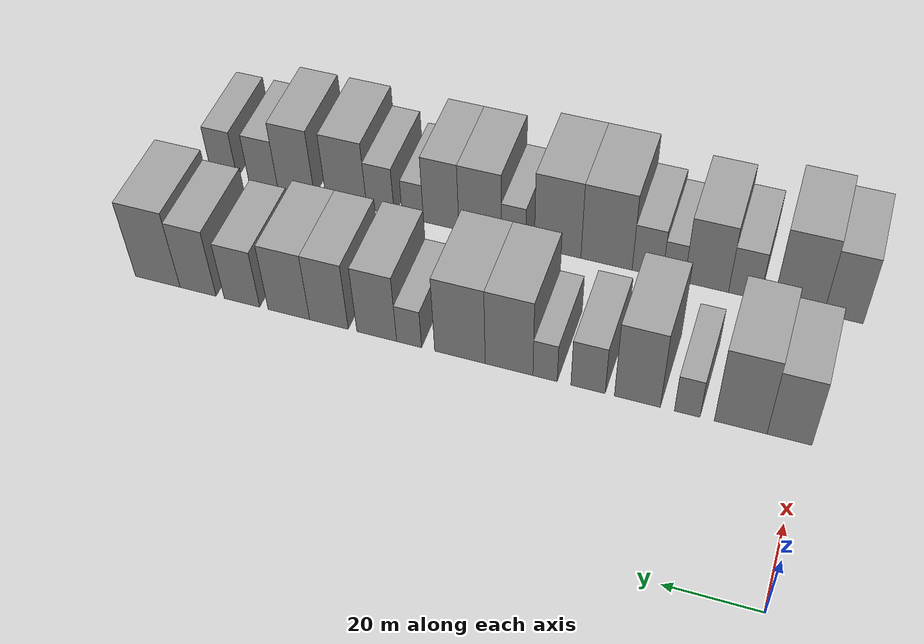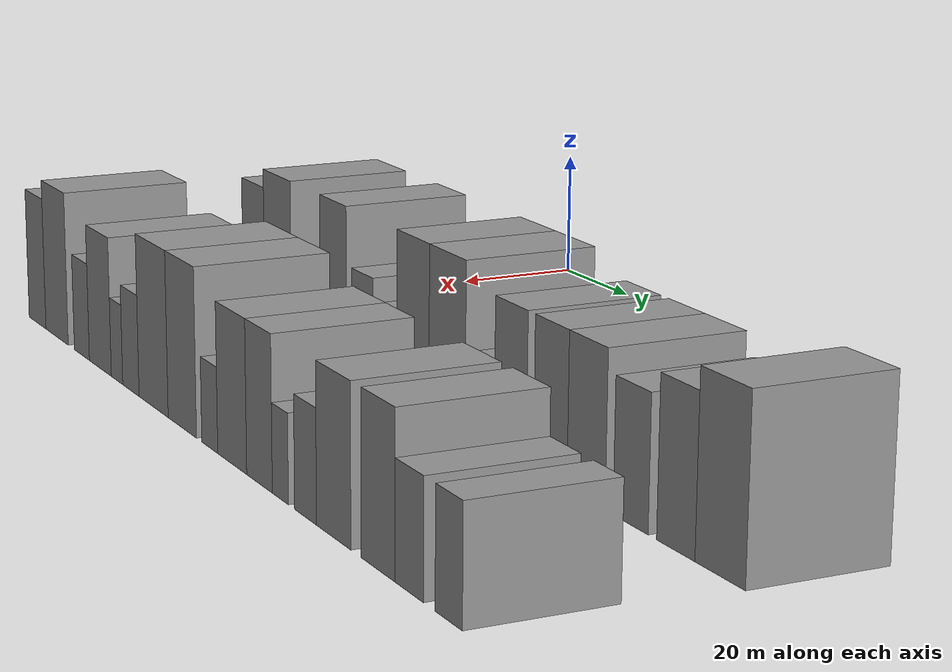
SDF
<sdf version="1.6">
 <world name="default">
  <model name="building_34">
   <static>1</static>
   <pose>50.0000 2.4501 0 0.000000 0.000000 0.000000</pose>
   <link name="link">
    <pose>0 0 10.50 0 0 0</pose>
    <collision name="collision"><geometry><box><size>20.0000 9.3061 21.0000</size></box></geometry></collision>
    <visual name="visual">
     <cast_shadows>0</cast_shadows>
     <geometry><box><size>20.0000 9.3061 21.0000</size></box></geometry>
     <material>
      <script>
       <uri>model://grey_wall/materials/scripts</uri>
       <uri>model://grey_wall/materials/textures</uri>
       <name>vrc/grey_wall</name>
      </script>
     </material>
    </visual>
   </link>
  </model>
  <model name="building_35">
   <static>1</static>
   <pose>50.0000 12.6278 0 0.000000 0.000000 0.000000</pose>
   <link name="link">
    <pose>0 0 12.00 0 0 0</pose>
    <collision name="collision"><geometry><box><size>20.0000 11.0493 24.0000</size></box></geometry></collision>
    <visual name="visual">
     <cast_shadows>0</cast_shadows>
     <geometry><box><size>20.0000 11.0493 24.0000</size></box></geometry>
     <material>
      <script>
       <uri>model://grey_wall/materials/scripts</uri>
       <uri>model://grey_wall/materials/textures</uri>
       <name>vrc/grey_wall</name>
      </script>
     </material>
    </visual>
   </link>
  </model>
  <model name="building_36">
   <static>1</static>
   <pose>50.0000 23.8809 0 0.000000 0.000000 0.000000</pose>
   <link name="link">
    <pose>0 0 6.00 0 0 0</pose>
    <collision name="collision"><geometry><box><size>20.0000 5.4568 12.0000</size></box></geometry></collision>
    <visual name="visual">
     <cast_shadows>0</cast_shadows>
     <geometry><box><size>20.0000 5.4568 12.0000</size></box></geometry>
     <material>
      <script>
       <uri>model://grey_wall/materials/scripts</uri>
       <uri>model://grey_wall/materials/textures</uri>
       <name>vrc/grey_wall</name>
      </script>
     </material>
    </visual>
   </link>
  </model>
  <model name="building_37">
   <static>1</static>
   <pose>50.0000 34.5633 0 0.000000 0.000000 0.000000</pose>
   <link name="link">
    <pose>0 0 12.00 0 0 0</pose>
    <collision name="collision"><geometry><box><size>20.0000 9.9080 24.0000</size></box></geometry></collision>
    <visual name="visual">
     <cast_shadows>0</cast_shadows>
     <geometry><box><size>20.0000 9.9080 24.0000</size></box></geometry>
     <material>
      <script>
       <uri>model://grey_wall/materials/scripts</uri>
       <uri>model://grey_wall/materials/textures</uri>
       <name>vrc/grey_wall</name>
      </script>
     </material>
    </visual>
   </link>
  </model>
  <model name="building_38">
   <static>1</static>
   <pose>50.0000 45.2656 0 0.000000 0.000000 0.000000</pose>
   <link name="link">
    <pose>0 0 7.50 0 0 0</pose>
    <collision name="collision"><geometry><box><size>20.0000 7.4966 15.0000</size></box></geometry></collision>
    <visual name="visual">
     <cast_shadows>0</cast_shadows>
     <geometry><box><size>20.0000 7.4966 15.0000</size></box></geometry>
     <material>
      <script>
       <uri>model://grey_wall/materials/scripts</uri>
       <uri>model://grey_wall/materials/textures</uri>
       <name>vrc/grey_wall</name>
      </script>
     </material>
    </visual>
   </link>
  </model>
  <model name="building_39">
   <static>1</static>
   <pose>50.0000 54.6989 0 0.000000 0.000000 0.000000</pose>
   <link name="link">
    <pose>0 0 6.00 0 0 0</pose>
    <collision name="collision"><geometry><box><size>20.0000 5.3701 12.0000</size></box></geometry></collision>
    <visual name="visual">
     <cast_shadows>0</cast_shadows>
     <geometry><box><size>20.0000 5.3701 12.0000</size></box></geometry>
     <material>
      <script>
       <uri>model://grey_wall/materials/scripts</uri>
       <uri>model://grey_wall/materials/textures</uri>
       <name>vrc/grey_wall</name>
      </script>
     </material>
    </visual>
   </link>
  </model>
  <model name="building_40">
   <static>1</static>
   <pose>50.0000 62.7088 0 0.000000 0.000000 0.000000</pose>
   <link name="link">
    <pose>0 0 12.00 0 0 0</pose>
    <collision name="collision"><geometry><box><size>20.0000 10.6496 24.0000</size></box></geometry></collision>
    <visual name="visual">
     <cast_shadows>0</cast_shadows>
     <geometry><box><size>20.0000 10.6496 24.0000</size></box></geometry>
     <material>
      <script>
       <uri>model://grey_wall/materials/scripts</uri>
       <uri>model://grey_wall/materials/textures</uri>
       <name>vrc/grey_wall</name>
      </script>
     </material>
    </visual>
   </link>
  </model>
  <model name="building_41">
   <static>1</static>
   <pose>50.0000 73.7607 0 0.000000 0.000000 0.000000</pose>
   <link name="link">
    <pose>0 0 12.00 0 0 0</pose>
    <collision name="collision"><geometry><box><size>20.0000 11.4543 24.0000</size></box></geometry></collision>
    <visual name="visual">
     <cast_shadows>0</cast_shadows>
     <geometry><box><size>20.0000 11.4543 24.0000</size></box></geometry>
     <material>
      <script>
       <uri>model://grey_wall/materials/scripts</uri>
       <uri>model://grey_wall/materials/textures</uri>
       <name>vrc/grey_wall</name>
      </script>
     </material>
    </visual>
   </link>
  </model>
  <model name="building_42">
   <static>1</static>
   <pose>50.0000 85.3550 0 0.000000 0.000000 0.000000</pose>
   <link name="link">
    <pose>0 0 6.00 0 0 0</pose>
    <collision name="collision"><geometry><box><size>20.0000 5.7342 12.0000</size></box></geometry></collision>
    <visual name="visual">
     <cast_shadows>0</cast_shadows>
     <geometry><box><size>20.0000 5.7342 12.0000</size></box></geometry>
     <material>
      <script>
       <uri>model://grey_wall/materials/scripts</uri>
       <uri>model://grey_wall/materials/textures</uri>
       <name>vrc/grey_wall</name>
      </script>
     </material>
    </visual>
   </link>
  </model>
  <model name="building_43">
   <static>1</static>
   <pose>50.0000 92.8432 0 0.000000 0.000000 0.000000</pose>
   <link name="link">
    <pose>0 0 10.50 0 0 0</pose>
    <collision name="collision"><geometry><box><size>20.0000 9.2423 21.0000</size></box></geometry></collision>
    <visual name="visual">
     <cast_shadows>0</cast_shadows>
     <geometry><box><size>20.0000 9.2423 21.0000</size></box></geometry>
     <material>
      <script>
       <uri>model://grey_wall/materials/scripts</uri>
       <uri>model://grey_wall/materials/textures</uri>
       <name>vrc/grey_wall</name>
      </script>
     </material>
    </visual>
   </link>
  </model>
  <model name="building_44">
   <static>1</static>
   <pose>50.0000 104.0225 0 0.000000 0.000000 0.000000</pose>
   <link name="link">
    <pose>0 0 10.50 0 0 0</pose>
    <collision name="collision"><geometry><box><size>20.0000 9.1162 21.0000</size></box></geometry></collision>
    <visual name="visual">
     <cast_shadows>0</cast_shadows>
     <geometry><box><size>20.0000 9.1162 21.0000</size></box></geometry>
     <material>
      <script>
       <uri>model://grey_wall/materials/scripts</uri>
       <uri>model://grey_wall/materials/textures</uri>
       <name>vrc/grey_wall</name>
      </script>
     </material>
    </visual>
   </link>
  </model>
  <model name="building_45">
   <static>1</static>
   <pose>50.0000 113.5234 0 0.000000 0.000000 0.000000</pose>
   <link name="link">
    <pose>0 0 10.50 0 0 0</pose>
    <collision name="collision"><geometry><box><size>20.0000 9.8857 21.0000</size></box></geometry></collision>
    <visual name="visual">
     <cast_shadows>0</cast_shadows>
     <geometry><box><size>20.0000 9.8857 21.0000</size></box></geometry>
     <material>
      <script>
       <uri>model://grey_wall/materials/scripts</uri>
       <uri>model://grey_wall/materials/textures</uri>
       <name>vrc/grey_wall</name>
      </script>
     </material>
    </visual>
   </link>
  </model>
  <model name="building_46">
   <static>1</static>
   <pose>50.0000 124.7438 0 0.000000 0.000000 0.000000</pose>
   <link name="link">
    <pose>0 0 9.00 0 0 0</pose>
    <collision name="collision"><geometry><box><size>20.0000 8.5551 18.0000</size></box></geometry></collision>
    <visual name="visual">
     <cast_shadows>0</cast_shadows>
     <geometry><box><size>20.0000 8.5551 18.0000</size></box></geometry>
     <material>
      <script>
       <uri>model://grey_wall/materials/scripts</uri>
       <uri>model://grey_wall/materials/textures</uri>
       <name>vrc/grey_wall</name>
      </script>
     </material>
    </visual>
   </link>
  </model>
  <model name="building_47">
   <static>1</static>
   <pose>50.0000 135.4320 0 0.000000 0.000000 0.000000</pose>
   <link name="link">
    <pose>0 0 10.50 0 0 0</pose>
    <collision name="collision"><geometry><box><size>20.0000 8.8213 21.0000</size></box></geometry></collision>
    <visual name="visual">
     <cast_shadows>0</cast_shadows>
     <geometry><box><size>20.0000 8.8213 21.0000</size></box></geometry>
     <material>
      <script>
       <uri>model://grey_wall/materials/scripts</uri>
       <uri>model://grey_wall/materials/textures</uri>
       <name>vrc/grey_wall</name>
      </script>
     </material>
    </visual>
   </link>
  </model>
  <model name="building_48">
   <static>1</static>
   <pose>50.0000 145.3478 0 0.000000 0.000000 0.000000</pose>
   <link name="link">
    <pose>0 0 12.00 0 0 0</pose>
    <collision name="collision"><geometry><box><size>20.0000 11.0102 24.0000</size></box></geometry></collision>
    <visual name="visual">
     <cast_shadows>0</cast_shadows>
     <geometry><box><size>20.0000 11.0102 24.0000</size></box></geometry>
     <material>
      <script>
       <uri>model://grey_wall/materials/scripts</uri>
       <uri>model://grey_wall/materials/textures</uri>
       <name>vrc/grey_wall</name>
      </script>
     </material>
    </visual>
   </link>
  </model>
  <model name="building_98">
   <static>1</static>
   <pose>85.0000 -3.3606 0 0.000000 0.000000 0.000000</pose>
   <link name="link">
    <pose>0 0 10.50 0 0 0</pose>
    <collision name="collision"><geometry><box><size>20.0000 8.7096 21.0000</size></box></geometry></collision>
    <visual name="visual">
     <cast_shadows>0</cast_shadows>
     <geometry><box><size>20.0000 8.7096 21.0000</size></box></geometry>
     <material>
      <script>
       <uri>model://grey_wall/materials/scripts</uri>
       <uri>model://grey_wall/materials/textures</uri>
       <name>vrc/grey_wall</name>
      </script>
     </material>
    </visual>
   </link>
  </model>
  <model name="building_99">
   <static>1</static>
   <pose>85.0000 6.5780 0 0.000000 0.000000 0.000000</pose>
   <link name="link">
    <pose>0 0 12.00 0 0 0</pose>
    <collision name="collision"><geometry><box><size>20.0000 11.1675 24.0000</size></box></geometry></collision>
    <visual name="visual">
     <cast_shadows>0</cast_shadows>
     <geometry><box><size>20.0000 11.1675 24.0000</size></box></geometry>
     <material>
      <script>
       <uri>model://grey_wall/materials/scripts</uri>
       <uri>model://grey_wall/materials/textures</uri>
       <name>vrc/grey_wall</name>
      </script>
     </material>
    </visual>
   </link>
  </model>
  <model name="building_100">
   <static>1</static>
   <pose>85.0000 18.7271 0 0.000000 0.000000 0.000000</pose>
   <link name="link">
    <pose>0 0 7.50 0 0 0</pose>
    <collision name="collision"><geometry><box><size>20.0000 7.1307 15.0000</size></box></geometry></collision>
    <visual name="visual">
     <cast_shadows>0</cast_shadows>
     <geometry><box><size>20.0000 7.1307 15.0000</size></box></geometry>
     <material>
      <script>
       <uri>model://grey_wall/materials/scripts</uri>
       <uri>model://grey_wall/materials/textures</uri>
       <name>vrc/grey_wall</name>
      </script>
     </material>
    </visual>
   </link>
  </model>
  <model name="building_101">
   <static>1</static>
   <pose>85.0000 27.3192 0 0.000000 0.000000 0.000000</pose>
   <link name="link">
    <pose>0 0 10.50 0 0 0</pose>
    <collision name="collision"><geometry><box><size>20.0000 10.0535 21.0000</size></box></geometry></collision>
    <visual name="visual">
     <cast_shadows>0</cast_shadows>
     <geometry><box><size>20.0000 10.0535 21.0000</size></box></geometry>
     <material>
      <script>
       <uri>model://grey_wall/materials/scripts</uri>
       <uri>model://grey_wall/materials/textures</uri>
       <name>vrc/grey_wall</name>
      </script>
     </material>
    </visual>
   </link>
  </model>
  <model name="building_102">
   <static>1</static>
   <pose>85.0000 34.8695 0 0.000000 0.000000 0.000000</pose>
   <link name="link">
    <pose>0 0 6.00 0 0 0</pose>
    <collision name="collision"><geometry><box><size>20.0000 5.0471 12.0000</size></box></geometry></collision>
    <visual name="visual">
     <cast_shadows>0</cast_shadows>
     <geometry><box><size>20.0000 5.0471 12.0000</size></box></geometry>
     <material>
      <script>
       <uri>model://grey_wall/materials/scripts</uri>
       <uri>model://grey_wall/materials/textures</uri>
       <name>vrc/grey_wall</name>
      </script>
     </material>
    </visual>
   </link>
  </model>
  <model name="building_103">
   <static>1</static>
   <pose>85.0000 40.9178 0 0.000000 0.000000 0.000000</pose>
   <link name="link">
    <pose>0 0 7.50 0 0 0</pose>
    <collision name="collision"><geometry><box><size>20.0000 7.0496 15.0000</size></box></geometry></collision>
    <visual name="visual">
     <cast_shadows>0</cast_shadows>
     <geometry><box><size>20.0000 7.0496 15.0000</size></box></geometry>
     <material>
      <script>
       <uri>model://grey_wall/materials/scripts</uri>
       <uri>model://grey_wall/materials/textures</uri>
       <name>vrc/grey_wall</name>
      </script>
     </material>
    </visual>
   </link>
  </model>
  <model name="building_104">
   <static>1</static>
   <pose>85.0000 50.4417 0 0.000000 0.000000 0.000000</pose>
   <link name="link">
    <pose>0 0 12.00 0 0 0</pose>
    <collision name="collision"><geometry><box><size>20.0000 11.9984 24.0000</size></box></geometry></collision>
    <visual name="visual">
     <cast_shadows>0</cast_shadows>
     <geometry><box><size>20.0000 11.9984 24.0000</size></box></geometry>
     <material>
      <script>
       <uri>model://grey_wall/materials/scripts</uri>
       <uri>model://grey_wall/materials/textures</uri>
       <name>vrc/grey_wall</name>
      </script>
     </material>
    </visual>
   </link>
  </model>
  <model name="building_105">
   <static>1</static>
   <pose>85.0000 61.9719 0 0.000000 0.000000 0.000000</pose>
   <link name="link">
    <pose>0 0 12.00 0 0 0</pose>
    <collision name="collision"><geometry><box><size>20.0000 11.0620 24.0000</size></box></geometry></collision>
    <visual name="visual">
     <cast_shadows>0</cast_shadows>
     <geometry><box><size>20.0000 11.0620 24.0000</size></box></geometry>
     <material>
      <script>
       <uri>model://grey_wall/materials/scripts</uri>
       <uri>model://grey_wall/materials/textures</uri>
       <name>vrc/grey_wall</name>
      </script>
     </material>
    </visual>
   </link>
  </model>
  <model name="building_106">
   <static>1</static>
   <pose>85.0000 72.4606 0 0.000000 0.000000 0.000000</pose>
   <link name="link">
    <pose>0 0 6.00 0 0 0</pose>
    <collision name="collision"><geometry><box><size>20.0000 5.9154 12.0000</size></box></geometry></collision>
    <visual name="visual">
     <cast_shadows>0</cast_shadows>
     <geometry><box><size>20.0000 5.9154 12.0000</size></box></geometry>
     <material>
      <script>
       <uri>model://grey_wall/materials/scripts</uri>
       <uri>model://grey_wall/materials/textures</uri>
       <name>vrc/grey_wall</name>
      </script>
     </material>
    </visual>
   </link>
  </model>
  <model name="building_107">
   <static>1</static>
   <pose>85.0000 80.5788 0 0.000000 0.000000 0.000000</pose>
   <link name="link">
    <pose>0 0 10.50 0 0 0</pose>
    <collision name="collision"><geometry><box><size>20.0000 10.3210 21.0000</size></box></geometry></collision>
    <visual name="visual">
     <cast_shadows>0</cast_shadows>
     <geometry><box><size>20.0000 10.3210 21.0000</size></box></geometry>
     <material>
      <script>
       <uri>model://grey_wall/materials/scripts</uri>
       <uri>model://grey_wall/materials/textures</uri>
       <name>vrc/grey_wall</name>
      </script>
     </material>
    </visual>
   </link>
  </model>
  <model name="building_108">
   <static>1</static>
   <pose>85.0000 90.0885 0 0.000000 0.000000 0.000000</pose>
   <link name="link">
    <pose>0 0 10.50 0 0 0</pose>
    <collision name="collision"><geometry><box><size>20.0000 8.6983 21.0000</size></box></geometry></collision>
    <visual name="visual">
     <cast_shadows>0</cast_shadows>
     <geometry><box><size>20.0000 8.6983 21.0000</size></box></geometry>
     <material>
      <script>
       <uri>model://grey_wall/materials/scripts</uri>
       <uri>model://grey_wall/materials/textures</uri>
       <name>vrc/grey_wall</name>
      </script>
     </material>
    </visual>
   </link>
  </model>
  <model name="building_109">
   <static>1</static>
   <pose>85.0000 97.0671 0 0.000000 0.000000 0.000000</pose>
   <link name="link">
    <pose>0 0 6.00 0 0 0</pose>
    <collision name="collision"><geometry><box><size>20.0000 5.2590 12.0000</size></box></geometry></collision>
    <visual name="visual">
     <cast_shadows>0</cast_shadows>
     <geometry><box><size>20.0000 5.2590 12.0000</size></box></geometry>
     <material>
      <script>
       <uri>model://grey_wall/materials/scripts</uri>
       <uri>model://grey_wall/materials/textures</uri>
       <name>vrc/grey_wall</name>
      </script>
     </material>
    </visual>
   </link>
  </model>
  <model name="building_110">
   <static>1</static>
   <pose>85.0000 105.1294 0 0.000000 0.000000 0.000000</pose>
   <link name="link">
    <pose>0 0 7.50 0 0 0</pose>
    <collision name="collision"><geometry><box><size>20.0000 6.8656 15.0000</size></box></geometry></collision>
    <visual name="visual">
     <cast_shadows>0</cast_shadows>
     <geometry><box><size>20.0000 6.8656 15.0000</size></box></geometry>
     <material>
      <script>
       <uri>model://grey_wall/materials/scripts</uri>
       <uri>model://grey_wall/materials/textures</uri>
       <name>vrc/grey_wall</name>
      </script>
     </material>
    </visual>
   </link>
  </model>
  <model name="building_111">
   <static>1</static>
   <pose>85.0000 113.6988 0 0.000000 0.000000 0.000000</pose>
   <link name="link">
    <pose>0 0 10.50 0 0 0</pose>
    <collision name="collision"><geometry><box><size>20.0000 10.2732 21.0000</size></box></geometry></collision>
    <visual name="visual">
     <cast_shadows>0</cast_shadows>
     <geometry><box><size>20.0000 10.2732 21.0000</size></box></geometry>
     <material>
      <script>
       <uri>model://grey_wall/materials/scripts</uri>
       <uri>model://grey_wall/materials/textures</uri>
       <name>vrc/grey_wall</name>
      </script>
     </material>
    </visual>
   </link>
  </model>
  <model name="building_112">
   <static>1</static>
   <pose>85.0000 126.5559 0 0.000000 0.000000 0.000000</pose>
   <link name="link">
    <pose>0 0 10.50 0 0 0</pose>
    <collision name="collision"><geometry><box><size>20.0000 9.4411 21.0000</size></box></geometry></collision>
    <visual name="visual">
     <cast_shadows>0</cast_shadows>
     <geometry><box><size>20.0000 9.4411 21.0000</size></box></geometry>
     <material>
      <script>
       <uri>model://grey_wall/materials/scripts</uri>
       <uri>model://grey_wall/materials/textures</uri>
       <name>vrc/grey_wall</name>
      </script>
     </material>
    </visual>
   </link>
  </model>
  <model name="building_113">
   <static>1</static>
   <pose>85.0000 135.0159 0 0.000000 0.000000 0.000000</pose>
   <link name="link">
    <pose>0 0 7.50 0 0 0</pose>
    <collision name="collision"><geometry><box><size>20.0000 7.4787 15.0000</size></box></geometry></collision>
    <visual name="visual">
     <cast_shadows>0</cast_shadows>
     <geometry><box><size>20.0000 7.4787 15.0000</size></box></geometry>
     <material>
      <script>
       <uri>model://grey_wall/materials/scripts</uri>
       <uri>model://grey_wall/materials/textures</uri>
       <name>vrc/grey_wall</name>
      </script>
     </material>
    </visual>
   </link>
  </model>
  <model name="building_114">
   <static>1</static>
   <pose>85.0000 145.1619 0 0.000000 0.000000 0.000000</pose>
   <link name="link">
    <pose>0 0 7.50 0 0 0</pose>
    <collision name="collision"><geometry><box><size>20.0000 6.8134 15.0000</size></box></geometry></collision>
    <visual name="visual">
     <cast_shadows>0</cast_shadows>
     <geometry><box><size>20.0000 6.8134 15.0000</size></box></geometry>
     <material>
      <script>
       <uri>model://grey_wall/materials/scripts</uri>
       <uri>model://grey_wall/materials/textures</uri>
       <name>vrc/grey_wall</name>
      </script>
     </material>
    </visual>
   </link>
  </model>
 </world>
</sdf>
